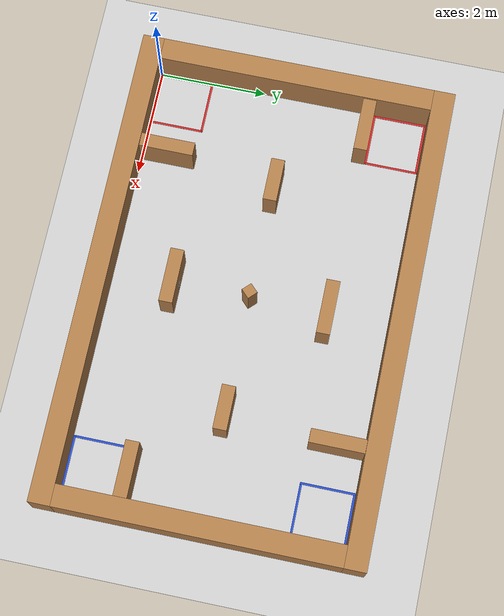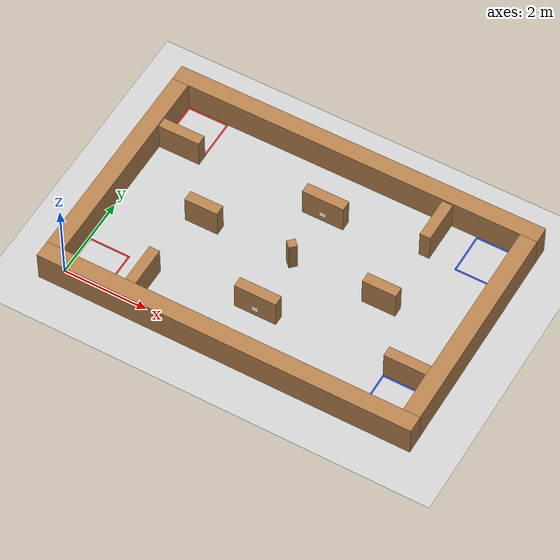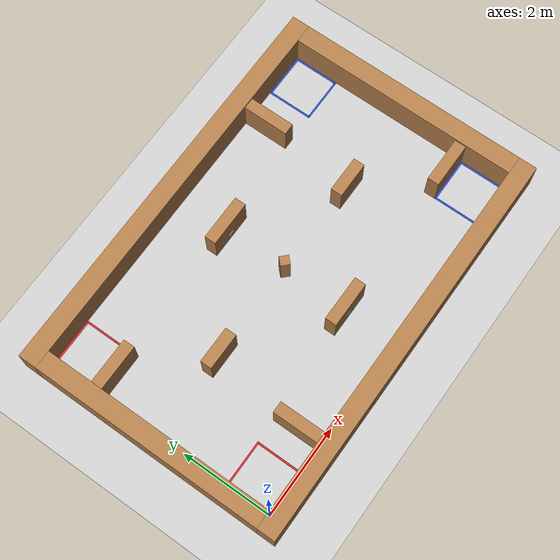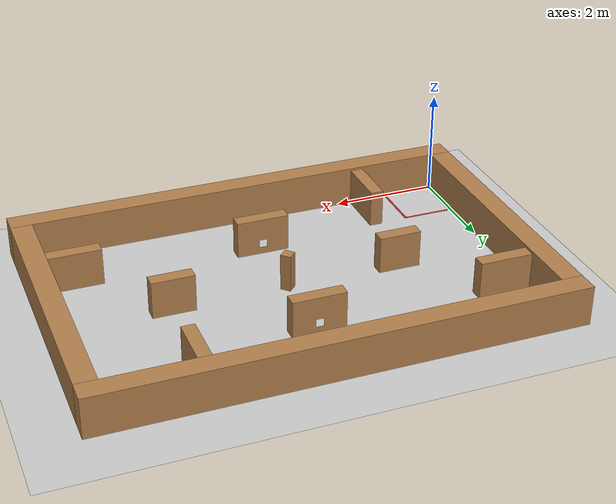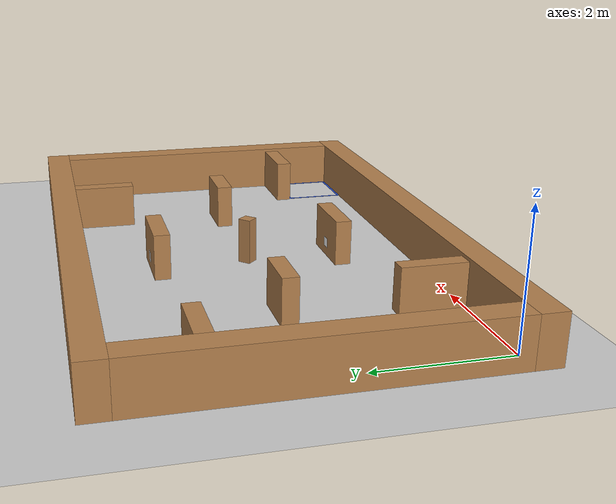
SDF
<sdf version="1.6">
 <world name="default">
  <model name="ground_plane">
   <static>1</static>
   <link name="link">
    <collision name="collision">
     <geometry><plane><normal>0 0 1</normal><size>100 100</size></plane></geometry>
     <surface><friction><ode><mu>100</mu><mu2>50</mu2></ode></friction></surface>
    </collision>
    <visual name="visual">
     <cast_shadows>0</cast_shadows>
     <geometry><plane><normal>0 0 1</normal><size>100 100</size></plane></geometry>
     <material>
      <script><uri>file://media/materials/scripts/gazebo.material</uri><name>Gazebo/Gray</name></script>
     </material>
    </visual>
   </link>
  </model>
  <gravity>0 0 -9.8</gravity>
  <magnetic_field>6e-06 2.3e-05 -4.2e-05</magnetic_field>
  <atmosphere type="adiabatic"/>
  <physics name="default_physics" default="0" type="ode">
   <max_step_size>0.001</max_step_size>
   <real_time_factor>1</real_time_factor>
   <real_time_update_rate>1000</real_time_update_rate>
  </physics>
  <scene><ambient>0.4 0.4 0.4 1</ambient><background>0.7 0.7 0.7 1</background><shadows>1</shadows></scene>
  <spherical_coordinates>
   <surface_model>EARTH_WGS84</surface_model>
   <latitude_deg>0</latitude_deg>
   <longitude_deg>0</longitude_deg>
   <elevation>0</elevation>
   <heading_deg>0</heading_deg>
  </spherical_coordinates>
  <audio><device>default</device></audio>
  <model name="Untitled1">
   <pose>1.625 0.5 0 0 -0 0</pose>
   <link name="Wall_0">
    <collision name="Wall_0_Collision">
     <geometry><box><size>1 0.25 1</size></box></geometry>
     <pose>0 0 0.2 0 -0 0</pose>
    </collision>
    <visual name="Wall_0_Visual">
     <pose>0 0 0.2 0 -0 0</pose>
     <geometry><box><size>1 0.25 1</size></box></geometry>
     <material>
      <script><uri>file://media/materials/scripts/gazebo.material</uri><name>Gazebo/Wood</name></script>
      <ambient>1 1 1 1</ambient>
     </material>
     <meta><layer>0</layer></meta>
    </visual>
    <pose>0 0 0 0 -0 1.5708</pose>
   </link>
   <static>1</static>
  </model>
  <model name="Untitled1_clone">
   <pose>6.375 4.6 0 0 -0 0</pose>
   <link name="Wall_0">
    <collision name="Wall_0_Collision">
     <geometry><box><size>1 0.25 1</size></box></geometry>
     <pose>0 0 0.2 0 -0 0</pose>
    </collision>
    <visual name="Wall_0_Visual">
     <pose>0 0 0.2 0 -0 0</pose>
     <geometry><box><size>1 0.25 1</size></box></geometry>
     <material>
      <script><uri>file://media/materials/scripts/gazebo.material</uri><name>Gazebo/Wood</name></script>
      <ambient>1 1 1 1</ambient>
     </material>
     <meta><layer>0</layer></meta>
    </visual>
    <pose>0 0 0 0 -0 1.5708</pose>
   </link>
   <static>1</static>
  </model>
  <model name="Untitled1_clone_0">
   <pose>0.5 3.975 0 0 0 -1.5708</pose>
   <link name="Wall_0">
    <collision name="Wall_0_Collision">
     <geometry><box><size>1 0.25 1</size></box></geometry>
     <pose>0 0 0.2 0 -0 0</pose>
    </collision>
    <visual name="Wall_0_Visual">
     <pose>0 0 0.2 0 -0 0</pose>
     <geometry><box><size>1 0.25 1</size></box></geometry>
     <material>
      <script><uri>file://media/materials/scripts/gazebo.material</uri><name>Gazebo/Wood</name></script>
      <ambient>1 1 1 1</ambient>
     </material>
     <meta><layer>0</layer></meta>
    </visual>
    <pose>0 0 0 0 -0 1.5708</pose>
   </link>
   <static>1</static>
  </model>
  <model name="Untitled2">
   <pose>4.05 2.55 0 0 -0 0</pose>
   <link name="Wall_11">
    <collision name="Wall_11_Collision">
     <geometry><box><size>5.1 0.4 1</size></box></geometry>
     <pose>0 0 0.25 0 -0 0</pose>
    </collision>
    <visual name="Wall_11_Visual">
     <pose>0 0 0.25 0 -0 0</pose>
     <geometry><box><size>5.1 0.4 1</size></box></geometry>
     <material>
      <script><uri>file://media/materials/scripts/gazebo.material</uri><name>Gazebo/Wood</name></script>
      <ambient>1 1 1 1</ambient>
     </material>
     <meta><layer>0</layer></meta>
    </visual>
    <pose>-4.25 -0 0 0 -0 1.5708</pose>
   </link>
   <link name="Wall_13">
    <collision name="Wall_13_Collision">
     <geometry><box><size>5.1 0.4 1</size></box></geometry>
     <pose>0 0 0.25 0 -0 0</pose>
    </collision>
    <visual name="Wall_13_Visual">
     <pose>0 0 0.25 0 -0 0</pose>
     <geometry><box><size>5.1 0.4 1</size></box></geometry>
     <material>
      <script><uri>file://media/materials/scripts/gazebo.material</uri><name>Gazebo/Wood</name></script>
      <ambient>1 1 1 1</ambient>
     </material>
     <meta><layer>0</layer></meta>
    </visual>
    <pose>4.25 -0 0 0 -0 1.5708</pose>
   </link>
   <link name="Wall_15">
    <collision name="Wall_15_Collision">
     <geometry><box><size>8.9 0.4 1</size></box></geometry>
     <pose>0 0 0.25 0 -0 0</pose>
    </collision>
    <visual name="Wall_15_Visual">
     <pose>0 0 0.25 0 -0 0</pose>
     <geometry><box><size>8.9 0.4 1</size></box></geometry>
     <material>
      <script><uri>file://media/materials/scripts/gazebo.material</uri><name>Gazebo/Wood</name></script>
      <ambient>1 1 1 1</ambient>
     </material>
     <meta><layer>0</layer></meta>
    </visual>
    <pose>-0 2.75 0 0 -0 0</pose>
   </link>
   <link name="Wall_6">
    <collision name="Wall_6_Collision">
     <geometry><box><size>8.9 0.4 1</size></box></geometry>
     <pose>0 0 0.25 0 -0 0</pose>
    </collision>
    <visual name="Wall_6_Visual">
     <pose>0 0 0.25 0 -0 0</pose>
     <geometry><box><size>8.9 0.4 1</size></box></geometry>
     <material>
      <script><uri>file://media/materials/scripts/gazebo.material</uri><name>Gazebo/Wood</name></script>
      <ambient>1 1 1 1</ambient>
     </material>
     <meta><layer>0</layer></meta>
    </visual>
    <pose>-0 -2.75 0 0 -0 0</pose>
   </link>
   <static>1</static>
  </model>
  <model name="Untitled1_clone_0_clone">
   <pose>7.6 1.125 0 0 0 -1.5708</pose>
   <link name="Wall_0">
    <collision name="Wall_0_Collision">
     <geometry><box><size>1 0.25 1</size></box></geometry>
     <pose>0 0 0.2 0 -0 0</pose>
    </collision>
    <visual name="Wall_0_Visual">
     <pose>0 0 0.2 0 -0 0</pose>
     <geometry><box><size>1 0.25 1</size></box></geometry>
     <material>
      <script><uri>file://media/materials/scripts/gazebo.material</uri><name>Gazebo/Wood</name></script>
      <ambient>1 1 1 1</ambient>
     </material>
     <meta><layer>0</layer></meta>
    </visual>
    <pose>0 0 0 0 -0 1.5708</pose>
   </link>
   <static>1</static>
  </model>
  <model name="Untitled1_clone_0_clone_0">
   <pose>4.05 1.125 0 0 0 -1.5708</pose>
   <link name="Wall_0">
    <collision name="Wall_0_Collision">
     <geometry><box><size>1 0.25 1</size></box></geometry>
     <pose>0 0 0.2 0 -0 0</pose>
    </collision>
    <visual name="Wall_0_Visual">
     <pose>0 0 0.2 0 -0 0</pose>
     <geometry><box><size>1 0.25 1</size></box></geometry>
     <material>
      <script><uri>file://media/materials/scripts/gazebo.material</uri><name>Gazebo/Wood</name></script>
      <ambient>1 1 1 1</ambient>
     </material>
     <meta><layer>0</layer></meta>
    </visual>
    <pose>0 0 0 0 -0 1.5708</pose>
   </link>
   <static>1</static>
  </model>
  <model name="Untitled1_clone_0_clone_1">
   <pose>4.05 3.975 0 0 0 -1.5708</pose>
   <link name="Wall_0">
    <collision name="Wall_0_Collision">
     <geometry><box><size>1 0.25 1</size></box></geometry>
     <pose>0 0 0.2 0 -0 0</pose>
    </collision>
    <visual name="Wall_0_Visual">
     <pose>0 0 0.2 0 -0 0</pose>
     <geometry><box><size>1 0.25 1</size></box></geometry>
     <material>
      <script><uri>file://media/materials/scripts/gazebo.material</uri><name>Gazebo/Wood</name></script>
      <ambient>1 1 1 1</ambient>
     </material>
     <meta><layer>0</layer></meta>
    </visual>
    <pose>0 0 0 0 -0 1.5708</pose>
   </link>
   <static>1</static>
  </model>
  <model name="Untitled3">
   <pose>1.9 2.55 0 0 -0 0</pose>
   <link name="Wall_17">
    <collision name="Wall_17_Collision">
     <geometry><box><size>0.8 0.25 1</size></box></geometry>
     <pose>0 0 0.2 0 -0 0</pose>
    </collision>
    <visual name="Wall_17_Visual">
     <pose>0 0 0.2 0 -0 0</pose>
     <geometry><box><size>0.8 0.25 1</size></box></geometry>
     <material>
      <script><uri>file://media/materials/scripts/gazebo.material</uri><name>Gazebo/Wood</name></script>
      <ambient>1 1 1 1</ambient>
     </material>
     <meta><layer>0</layer></meta>
    </visual>
   </link>
   <static>1</static>
  </model>
  <model name="Untitled3_clone">
   <pose>6.2 2.55 0 0 -0 0</pose>
   <link name="Wall_17">
    <collision name="Wall_17_Collision">
     <geometry><box><size>0.8 0.25 1</size></box></geometry>
     <pose>0 0 0.2 0 -0 0</pose>
    </collision>
    <visual name="Wall_17_Visual">
     <pose>0 0 0.2 0 -0 0</pose>
     <geometry><box><size>0.8 0.25 1</size></box></geometry>
     <material>
      <script><uri>file://media/materials/scripts/gazebo.material</uri><name>Gazebo/Wood</name></script>
      <ambient>1 1 1 1</ambient>
     </material>
     <meta><layer>0</layer></meta>
    </visual>
   </link>
   <static>1</static>
  </model>
  <model name="Untitled4">
   <pose>4.05 2.55 0 0 -0 0.785398</pose>
   <link name="Wall_19">
    <collision name="Wall_19_Collision">
     <geometry><box><size>0.2 0.2 1</size></box></geometry>
     <pose>0 0 0.2 0 -0 0</pose>
    </collision>
    <visual name="Wall_19_Visual">
     <pose>0 0 0.2 0 -0 0</pose>
     <geometry><box><size>0.2 0.2 1</size></box></geometry>
     <material>
      <script><uri>file://media/materials/scripts/gazebo.material</uri><name>Gazebo/Wood</name></script>
      <ambient>1 1 1 1</ambient>
     </material>
     <meta><layer>0</layer></meta>
    </visual>
   </link>
   <static>1</static>
  </model>
  <model name="Untitled_0">
   <pose>0.48 0.02 0 0 -0 0</pose>
   <link name="Untitled_0::Wall_4">
    <collision name="Wall_4_Collision">
     <geometry><box><size>1.04 0.04 0.001</size></box></geometry>
     <pose>0 0 0.0005 0 -0 0</pose>
    </collision>
    <visual name="Wall_4_Visual">
     <pose>0 0 0.0005 0 -0 0</pose>
     <geometry><box><size>1.04 0.04 0.001</size></box></geometry>
     <material>
      <script><uri>file://media/materials/scripts/gazebo.material</uri><name>Gazebo/Red</name></script>
      <ambient>0.435294 0.796078 0.67451 1</ambient>
     </material>
     <meta><layer>0</layer></meta>
    </visual>
    <kinematic>1</kinematic>
   </link>
   <static>1</static>
  </model>
  <model name="Untitled_0_clone">
   <pose>0.48 0.98 0 0 -0 0</pose>
   <link name="Untitled_0::Wall_4">
    <collision name="Wall_4_Collision">
     <geometry><box><size>1.04 0.04 0.001</size></box></geometry>
     <pose>0 0 0.0005 0 -0 0</pose>
    </collision>
    <visual name="Wall_4_Visual">
     <pose>0 0 0.0005 0 -0 0</pose>
     <geometry><box><size>1.04 0.04 0.001</size></box></geometry>
     <material>
      <script><uri>file://media/materials/scripts/gazebo.material</uri><name>Gazebo/Red</name></script>
      <ambient>0.435294 0.796078 0.67451 1</ambient>
     </material>
     <meta><layer>0</layer></meta>
    </visual>
    <kinematic>1</kinematic>
   </link>
   <static>1</static>
  </model>
  <model name="Untitled_0_clone_clone">
   <pose>0.02 0.48 0 0 -0 1.57</pose>
   <link name="Untitled_0::Wall_4">
    <collision name="Wall_4_Collision">
     <geometry><box><size>1.04 0.04 0.001</size></box></geometry>
     <pose>0 0 0.0005 0 -0 0</pose>
    </collision>
    <visual name="Wall_4_Visual">
     <pose>0 0 0.0005 0 -0 0</pose>
     <geometry><box><size>1.04 0.04 0.001</size></box></geometry>
     <material>
      <script><uri>file://media/materials/scripts/gazebo.material</uri><name>Gazebo/Red</name></script>
      <ambient>0.435294 0.796078 0.67451 1</ambient>
     </material>
     <meta><layer>0</layer></meta>
    </visual>
    <kinematic>1</kinematic>
   </link>
   <static>1</static>
  </model>
  <model name="Untitled_0_clone_clone_clone">
   <pose>0.98 0.48 0 0 -0 1.57</pose>
   <link name="Untitled_0::Wall_4">
    <collision name="Wall_4_Collision">
     <geometry><box><size>1.04 0.04 0.001</size></box></geometry>
     <pose>0 0 0.0005 0 -0 0</pose>
    </collision>
    <visual name="Wall_4_Visual">
     <pose>0 0 0.0005 0 -0 0</pose>
     <geometry><box><size>1.04 0.04 0.001</size></box></geometry>
     <material>
      <script><uri>file://media/materials/scripts/gazebo.material</uri><name>Gazebo/Red</name></script>
      <ambient>0.435294 0.796078 0.67451 1</ambient>
     </material>
     <meta><layer>0</layer></meta>
    </visual>
    <kinematic>1</kinematic>
   </link>
   <static>1</static>
  </model>
  <model name="Untitled_0_clone_clone_0">
   <pose>0.48 4.12 0 0 -0 0</pose>
   <link name="Untitled_0::Wall_4">
    <collision name="Wall_4_Collision">
     <geometry><box><size>1.04 0.04 0.001</size></box></geometry>
     <pose>0 0 0.0005 0 -0 0</pose>
    </collision>
    <visual name="Wall_4_Visual">
     <pose>0 0 0.0005 0 -0 0</pose>
     <geometry><box><size>1.04 0.04 0.001</size></box></geometry>
     <material>
      <script><uri>file://media/materials/scripts/gazebo.material</uri><name>Gazebo/Red</name></script>
      <ambient>0.435294 0.796078 0.67451 1</ambient>
     </material>
     <meta><layer>0</layer></meta>
    </visual>
    <kinematic>1</kinematic>
   </link>
   <static>1</static>
  </model>
  <model name="Untitled_0_clone_clone_1">
   <pose>0.48 5.08 0 0 -0 0</pose>
   <link name="Untitled_0::Wall_4">
    <collision name="Wall_4_Collision">
     <geometry><box><size>1.04 0.04 0.001</size></box></geometry>
     <pose>0 0 0.0005 0 -0 0</pose>
    </collision>
    <visual name="Wall_4_Visual">
     <pose>0 0 0.0005 0 -0 0</pose>
     <geometry><box><size>1.04 0.04 0.001</size></box></geometry>
     <material>
      <script><uri>file://media/materials/scripts/gazebo.material</uri><name>Gazebo/Red</name></script>
      <ambient>0.435294 0.796078 0.67451 1</ambient>
     </material>
     <meta><layer>0</layer></meta>
    </visual>
    <kinematic>1</kinematic>
   </link>
   <static>1</static>
  </model>
  <model name="Untitled_0_clone_clone_clone_clone">
   <pose>0.98 4.6 0 0 -0 1.57</pose>
   <link name="Untitled_0::Wall_4">
    <collision name="Wall_4_Collision">
     <geometry><box><size>1.04 0.04 0.001</size></box></geometry>
     <pose>0 0 0.0005 0 -0 0</pose>
    </collision>
    <visual name="Wall_4_Visual">
     <pose>0 0 0.0005 0 -0 0</pose>
     <geometry><box><size>1.04 0.04 0.001</size></box></geometry>
     <material>
      <script><uri>file://media/materials/scripts/gazebo.material</uri><name>Gazebo/Red</name></script>
      <ambient>0.435294 0.796078 0.67451 1</ambient>
     </material>
     <meta><layer>0</layer></meta>
    </visual>
    <kinematic>1</kinematic>
   </link>
   <static>1</static>
  </model>
  <model name="Untitled_0_clone_clone_clone_clone_0">
   <pose>0.02 4.6 0 0 -0 1.57</pose>
   <link name="Untitled_0::Wall_4">
    <collision name="Wall_4_Collision">
     <geometry><box><size>1.04 0.04 0.001</size></box></geometry>
     <pose>0 0 0.0005 0 -0 0</pose>
    </collision>
    <visual name="Wall_4_Visual">
     <pose>0 0 0.0005 0 -0 0</pose>
     <geometry><box><size>1.04 0.04 0.001</size></box></geometry>
     <material>
      <script><uri>file://media/materials/scripts/gazebo.material</uri><name>Gazebo/Red</name></script>
      <ambient>0.435294 0.796078 0.67451 1</ambient>
     </material>
     <meta><layer>0</layer></meta>
    </visual>
    <kinematic>1</kinematic>
   </link>
   <static>1</static>
  </model>
  <model name="Untitled">
   <pose>7.6 0.02 0 0 -0 0</pose>
   <link name="Wall_0">
    <collision name="Wall_0_Collision">
     <geometry><box><size>1 0.04 0.001</size></box></geometry>
     <pose>0 0 0.0005 0 -0 0</pose>
    </collision>
    <visual name="Wall_0_Visual">
     <pose>0 0 0.0005 0 -0 0</pose>
     <geometry><box><size>1 0.04 0.001</size></box></geometry>
     <material>
      <script><uri>file://media/materials/scripts/gazebo.material</uri><name>Gazebo/Blue</name></script>
      <ambient>1 1 1 1</ambient>
     </material>
     <meta><layer>0</layer></meta>
    </visual>
   </link>
   <static>1</static>
  </model>
  <model name="Untitled_clone">
   <pose>7.6 0.98 0 0 -0 0</pose>
   <link name="Wall_0">
    <collision name="Wall_0_Collision">
     <geometry><box><size>1 0.04 0.001</size></box></geometry>
     <pose>0 0 0.0005 0 -0 0</pose>
    </collision>
    <visual name="Wall_0_Visual">
     <pose>0 0 0.0005 0 -0 0</pose>
     <geometry><box><size>1 0.04 0.001</size></box></geometry>
     <material>
      <script><uri>file://media/materials/scripts/gazebo.material</uri><name>Gazebo/Blue</name></script>
      <ambient>1 1 1 1</ambient>
     </material>
     <meta><layer>0</layer></meta>
    </visual>
   </link>
   <static>1</static>
  </model>
  <model name="Untitled_clone_0">
   <pose>7.6 4.12 0 0 -0 0</pose>
   <link name="Wall_0">
    <collision name="Wall_0_Collision">
     <geometry><box><size>1 0.04 0.001</size></box></geometry>
     <pose>0 0 0.0005 0 -0 0</pose>
    </collision>
    <visual name="Wall_0_Visual">
     <pose>0 0 0.0005 0 -0 0</pose>
     <geometry><box><size>1 0.04 0.001</size></box></geometry>
     <material>
      <script><uri>file://media/materials/scripts/gazebo.material</uri><name>Gazebo/Blue</name></script>
      <ambient>1 1 1 1</ambient>
     </material>
     <meta><layer>0</layer></meta>
    </visual>
   </link>
   <static>1</static>
  </model>
  <model name="Untitled_clone_1">
   <pose>7.6 5.08 0 0 -0 0</pose>
   <link name="Wall_0">
    <collision name="Wall_0_Collision">
     <geometry><box><size>1 0.04 0.001</size></box></geometry>
     <pose>0 0 0.0005 0 -0 0</pose>
    </collision>
    <visual name="Wall_0_Visual">
     <pose>0 0 0.0005 0 -0 0</pose>
     <geometry><box><size>1 0.04 0.001</size></box></geometry>
     <material>
      <script><uri>file://media/materials/scripts/gazebo.material</uri><name>Gazebo/Blue</name></script>
      <ambient>1 1 1 1</ambient>
     </material>
     <meta><layer>0</layer></meta>
    </visual>
   </link>
   <static>1</static>
  </model>
  <model name="Untitled_clone_clone">
   <pose>7.12 0.5 0 0 -0 1.57</pose>
   <link name="Wall_0">
    <collision name="Wall_0_Collision">
     <geometry><box><size>1 0.04 0.001</size></box></geometry>
     <pose>0 0 0.0005 0 -0 0</pose>
    </collision>
    <visual name="Wall_0_Visual">
     <pose>0 0 0.0005 0 -0 0</pose>
     <geometry><box><size>1 0.04 0.001</size></box></geometry>
     <material>
      <script><uri>file://media/materials/scripts/gazebo.material</uri><name>Gazebo/Blue</name></script>
      <ambient>1 1 1 1</ambient>
     </material>
     <meta><layer>0</layer></meta>
    </visual>
   </link>
   <static>1</static>
  </model>
  <model name="Untitled_clone_clone_clone">
   <pose>8.08 0.5 0 0 -0 1.57</pose>
   <link name="Wall_0">
    <collision name="Wall_0_Collision">
     <geometry><box><size>1 0.04 0.001</size></box></geometry>
     <pose>0 0 0.0005 0 -0 0</pose>
    </collision>
    <visual name="Wall_0_Visual">
     <pose>0 0 0.0005 0 -0 0</pose>
     <geometry><box><size>1 0.04 0.001</size></box></geometry>
     <material>
      <script><uri>file://media/materials/scripts/gazebo.material</uri><name>Gazebo/Blue</name></script>
      <ambient>1 1 1 1</ambient>
     </material>
     <meta><layer>0</layer></meta>
    </visual>
   </link>
   <static>1</static>
  </model>
  <model name="Untitled_clone_clone_clone_0">
   <pose>7.12 4.6 0 0 -0 1.57</pose>
   <link name="Wall_0">
    <collision name="Wall_0_Collision">
     <geometry><box><size>1 0.04 0.001</size></box></geometry>
     <pose>0 0 0.0005 0 -0 0</pose>
    </collision>
    <visual name="Wall_0_Visual">
     <pose>0 0 0.0005 0 -0 0</pose>
     <geometry><box><size>1 0.04 0.001</size></box></geometry>
     <material>
      <script><uri>file://media/materials/scripts/gazebo.material</uri><name>Gazebo/Blue</name></script>
      <ambient>1 1 1 1</ambient>
     </material>
     <meta><layer>0</layer></meta>
    </visual>
   </link>
   <static>1</static>
  </model>
  <model name="Untitled_clone_clone_clone_1">
   <pose>8.08 4.6 0 0 -0 1.57</pose>
   <link name="Wall_0">
    <collision name="Wall_0_Collision">
     <geometry><box><size>1 0.04 0.001</size></box></geometry>
     <pose>0 0 0.0005 0 -0 0</pose>
    </collision>
    <visual name="Wall_0_Visual">
     <pose>0 0 0.0005 0 -0 0</pose>
     <geometry><box><size>1 0.04 0.001</size></box></geometry>
     <material>
      <script><uri>file://media/materials/scripts/gazebo.material</uri><name>Gazebo/Blue</name></script>
      <ambient>1 1 1 1</ambient>
     </material>
     <meta><layer>0</layer></meta>
    </visual>
   </link>
   <static>1</static>
  </model>
  <model name="Untitled_2">
   <pose>4.05 1.009 0.125 0 -0 0</pose>
   <link name="Wall_3">
    <collision name="Wall_3_Collision">
     <geometry><box><size>0.15 0.02 0.15</size></box></geometry>
     <pose>0 0 0.075 0 -0 0</pose>
    </collision>
    <visual name="Wall_3_Visual">
     <pose>0 0 0.075 0 -0 0</pose>
     <geometry><box><size>0.15 0.02 0.15</size></box></geometry>
     <material>
      <script><uri>file://media/materials/scripts/gazebo.material</uri><name>Gazebo/Yllow</name></script>
      <ambient>1 1 1 1</ambient>
     </material>
     <meta><layer>0</layer></meta>
    </visual>
    <pose>0 0 0 0 -0 3.14159</pose>
   </link>
   <static>1</static>
  </model>
  <model name="Untitled_2_clone">
   <pose>4.05 1.241 0.125 0 -0 0</pose>
   <link name="Wall_3">
    <collision name="Wall_3_Collision">
     <geometry><box><size>0.15 0.02 0.15</size></box></geometry>
     <pose>0 0 0.075 0 -0 0</pose>
    </collision>
    <visual name="Wall_3_Visual">
     <pose>0 0 0.075 0 -0 0</pose>
     <geometry><box><size>0.15 0.02 0.15</size></box></geometry>
     <material>
      <script><uri>file://media/materials/scripts/gazebo.material</uri><name>Gazebo/Yllow</name></script>
      <ambient>1 1 1 1</ambient>
     </material>
     <meta><layer>0</layer></meta>
    </visual>
    <pose>0 0 0 0 -0 3.14159</pose>
   </link>
   <static>1</static>
  </model>
  <model name="Untitled_2_clone_0">
   <pose>4.05 4.092 0.125 0 -0 0</pose>
   <link name="Wall_3">
    <collision name="Wall_3_Collision">
     <geometry><box><size>0.15 0.02 0.15</size></box></geometry>
     <pose>0 0 0.075 0 -0 0</pose>
    </collision>
    <visual name="Wall_3_Visual">
     <pose>0 0 0.075 0 -0 0</pose>
     <geometry><box><size>0.15 0.02 0.15</size></box></geometry>
     <material>
      <script><uri>file://media/materials/scripts/gazebo.material</uri><name>Gazebo/Yllow</name></script>
      <ambient>1 1 1 1</ambient>
     </material>
     <meta><layer>0</layer></meta>
    </visual>
    <pose>0 0 0 0 -0 3.14159</pose>
   </link>
   <static>1</static>
  </model>
  <model name="Untitled_2_clone_1">
   <pose>4.05 3.859 0.125 0 -0 0</pose>
   <link name="Wall_3">
    <collision name="Wall_3_Collision">
     <geometry><box><size>0.15 0.02 0.15</size></box></geometry>
     <pose>0 0 0.075 0 -0 0</pose>
    </collision>
    <visual name="Wall_3_Visual">
     <pose>0 0 0.075 0 -0 0</pose>
     <geometry><box><size>0.15 0.02 0.15</size></box></geometry>
     <material>
      <script><uri>file://media/materials/scripts/gazebo.material</uri><name>Gazebo/Yllow</name></script>
      <ambient>1 1 1 1</ambient>
     </material>
     <meta><layer>0</layer></meta>
    </visual>
    <pose>0 0 0 0 -0 3.14159</pose>
   </link>
   <static>1</static>
  </model>
  <light name="user_directional_light_0" type="directional">
   <pose>0.012832 7.41504 1 0 -0 0</pose>
   <diffuse>0.5 0.5 0.5 1</diffuse>
   <specular>0.1 0.1 0.1 1</specular>
   <direction>0.1 0.1 -0.9</direction>
   <attenuation>
    <range>20</range>
    <constant>0.5</constant>
    <linear>0.01</linear>
    <quadratic>0.001</quadratic>
   </attenuation>
  </light>
  <light name="user_directional_light_1" type="directional">
   <pose>1.21044 7.68208 1 0 -0 0</pose>
   <diffuse>0.5 0.5 0.5 1</diffuse>
   <specular>0.1 0.1 0.1 1</specular>
   <direction>0.1 0.1 -0.9</direction>
   <attenuation>
    <range>20</range>
    <constant>0.5</constant>
    <linear>0.01</linear>
    <quadratic>0.001</quadratic>
   </attenuation>
  </light>
  <light name="user_directional_light_2" type="directional">
   <pose>2.22914 7.9159 1 0 -0 0</pose>
   <diffuse>0.5 0.5 0.5 1</diffuse>
   <specular>0.1 0.1 0.1 1</specular>
   <direction>0.1 0.1 -0.9</direction>
   <attenuation>
    <range>20</range>
    <constant>0.5</constant>
    <linear>0.01</linear>
    <quadratic>0.001</quadratic>
   </attenuation>
  </light>
 </world>
</sdf>
